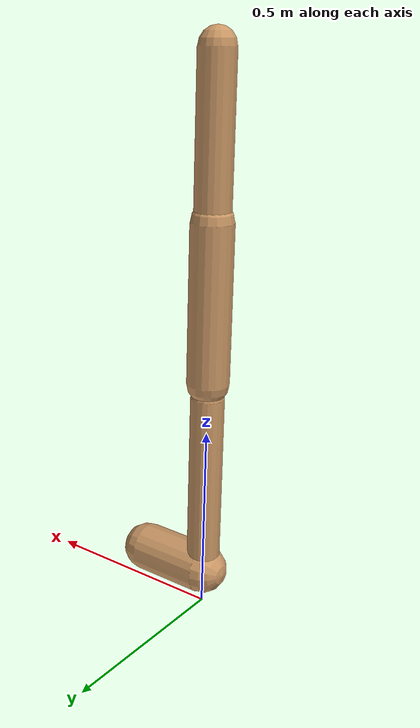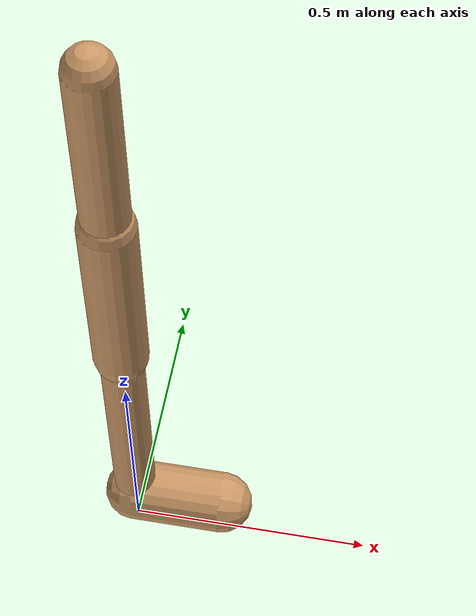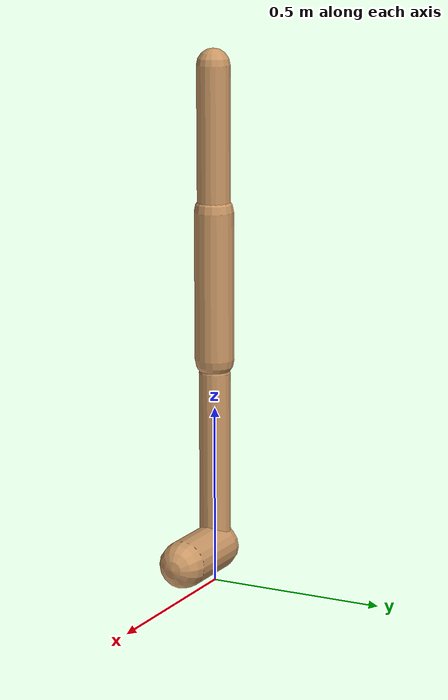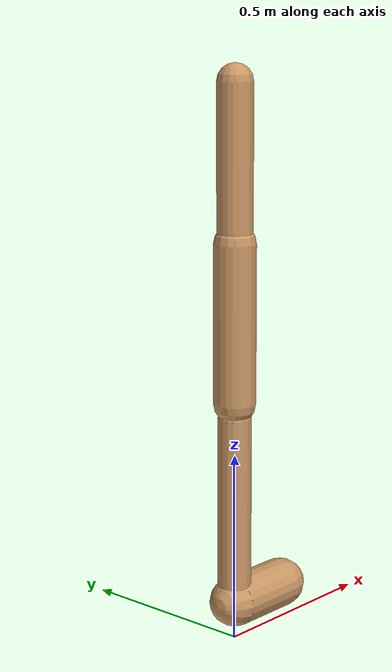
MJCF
<mujoco model="walker2d">
  <compiler angle="degree" coordinate="global" inertiafromgeom="true" />
  <default>
    <joint armature="0.01" damping=".1" limited="true" />
    <geom conaffinity="0" condim="3" contype="1" density="1000" friction="0.8 .1 .1" rgba="0.8 0.6 .4 1" />
  </default>
  <option integrator="RK4" timestep="0.002" />
  <worldbody>

    <body name="torso" pos="0 0 -0.08218538731760473">
      <joint armature="0" axis="1 0 0" damping="0" limited="false" name="ignorex" pos="0 0 0" stiffness="0" type="slide" />
      <joint armature="0" axis="0 0 1" damping="0" limited="false" name="ignorez" pos="0 0 0" ref="1.25" stiffness="0" type="slide" />
      <joint armature="0" axis="0 1 0" damping="0" limited="false" name="ignorey" pos="0 0 0" stiffness="0" type="hinge" />
      <geom fromto="0 0 1.45 0 0 1.05" name="torso_geom" size="0.046388831305996726" type="capsule" />
      <body name="thigh">
        <joint axis="0 -1 0" name="thigh_joint" pos="0 0 1.05" range="-150 0" type="hinge" />
        <geom fromto="0.0 0.0 1.05 0.0 0.0 0.6389299203083391" name="thigh_geom" size="0.05482378343328669" type="capsule" />
        <body name="leg" pos="0.0 0.0 0.03892992030833908">
          <joint axis="0 -1 0" name="leg_joint" pos="0 0 0.6" range="-150 0" type="hinge" />
          <geom fromto="0.0 0.0 0.6 0.0 0.0 0.14325546700926564" name="leg_geom" size="0.04385902674662935" type="capsule" />
          <body name="foot" pos="0.0 0.0 0.043255467009265636">
            <joint axis="0 -1 0" name="foot_joint" pos="0 0 0.1" range="-45 45" type="hinge" />
            <geom fromto="0.0 0.0 0.1 0.1881517851555417 0.0 0.1" name="foot_geom" size="0.06547185780274381" type="capsule" />
          </body>
        </body>
      </body>

      <body name="thigh_left">
        <joint axis="0 -1 0" name="thigh_left_joint" pos="0 0 1.05" range="-150 0" type="hinge" />
        <geom fromto="0.0 0.0 1.05 0.0 0.0 0.6389299203083391" name="thigh_left_geom" rgba=".7 .3 .6 1" size="0.05482378343328669" type="capsule" />
        <body name="leg_left" pos="0.0 0.0 0.03892992030833908">
          <joint axis="0 -1 0" name="leg_left_joint" pos="0 0 0.6" range="-150 0" type="hinge" />
          <geom fromto="0.0 0.0 0.6 0.0 0.0 0.14325546700926564" name="leg_left_geom" rgba=".7 .3 .6 1" size="0.04385902674662935" type="capsule" />
          <body name="foot_left" pos="0.0 0.0 0.043255467009265636">
            <joint axis="0 -1 0" name="foot_left_joint" pos="0 0 0.1" range="-45 45" type="hinge" />
            <geom fromto="0.0 0.0 0.1 0.1881517851555417 0.0 0.1" name="foot_left_geom" rgba=".7 .3 .6 1" size="0.06547185780274381" type="capsule" />
          </body>
        </body>
      </body>
    </body>
  </worldbody>
  <actuator>

    <motor ctrllimited="true" ctrlrange="-1.0 1.0" gear="100" joint="thigh_joint" />
    <motor ctrllimited="true" ctrlrange="-1.0 1.0" gear="100" joint="leg_joint" />
    <motor ctrllimited="true" ctrlrange="-1.0 1.0" gear="100" joint="foot_joint" />
    <motor ctrllimited="true" ctrlrange="-1.0 1.0" gear="100" joint="thigh_left_joint" />
    <motor ctrllimited="true" ctrlrange="-1.0 1.0" gear="100" joint="leg_left_joint" />
    <motor ctrllimited="true" ctrlrange="-1.0 1.0" gear="100" joint="foot_left_joint" />

  </actuator>
</mujoco>
